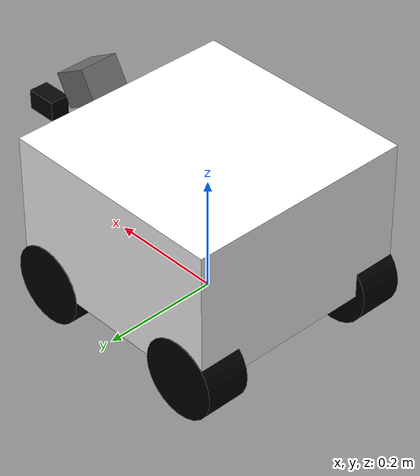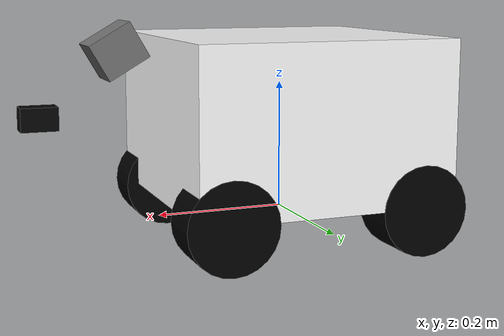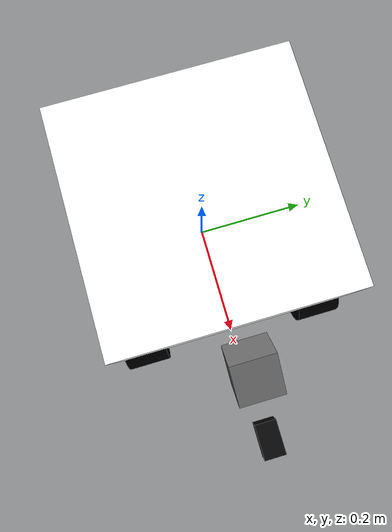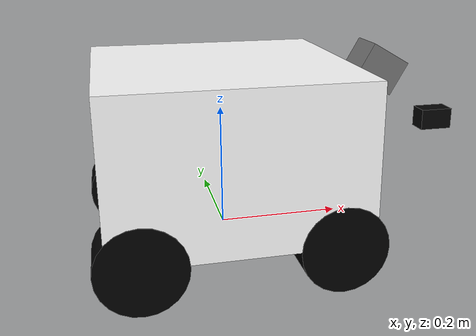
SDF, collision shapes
<sdf version='1.6'>
  <model name='r1_rover_ardupilot'>
    <link name='base_link'>
      <pose>0 0 0 0 -0 0</pose>
      <inertial>
        <pose>0 0 0 0 -0 0</pose>
        <mass>20.0</mass>
        <inertia>
          <ixx>0.37083</ixx>
          <ixy>0.0</ixy>
          <ixz>0.0</ixz>
          <iyy>0.37083</iyy>
          <iyz>0.0</iyz>
          <izz>0.53333</izz>
        </inertia>
      </inertial>
      <collision name='odom_fixed_joint_lump__base_link_collision'>
        <pose>0 0 0.15 0 -0 0</pose>
        <geometry>
          <box>
            <size>0.4 0.4 0.25</size>
          </box>
        </geometry>
        <surface>
          <contact>
            <ode />
          </contact>
          <friction>
            <ode />
          </friction>
        </surface>
      </collision>
      <visual name='odom_fixed_joint_lump__base_link_visual'>
        <pose>0 0 0 0 -0 0</pose>
        <geometry>
          <mesh>
            <scale>1 1 1</scale>
            <uri>model://r1_rover_ardupilot/meshes/chassis_link.STL</uri>
          </mesh>
        </geometry>
        <material>
          <diffuse>1.0 1.0 1.0</diffuse>
          <specular>1.0 1.0 1.0</specular>
        </material>
      </visual>
      <visual name='odom_fixed_joint_lump__top_link_visual_1'>
        <pose>0 0 0.114486 0 -0 0</pose>
        <geometry>
          <mesh>
            <scale>1 1 1</scale>
            <uri>model://r1_rover_ardupilot/meshes/top_link.STL</uri>
          </mesh>
        </geometry>
        <material>
          <diffuse>1.0 1.0 1.0</diffuse>
          <specular>1.0 1.0 1.0</specular>
        </material>
      </visual>
      <visual name='odom_fixed_joint_lump__battery_link_visual_2'>
        <pose>-0.09302 -0.000128 0.114486 0 -0 0</pose>
        <geometry>
          <mesh>
            <scale>1 1 1</scale>
            <uri>model://r1_rover_ardupilot/meshes/battery_link.STL</uri>
          </mesh>
        </geometry>
        <material>
          <diffuse>0.0 0.0 0.0</diffuse>
          <specular>0.5 0.5 0.5</specular>
        </material>
      </visual>
      <visual name='odom_fixed_joint_lump__housing_link_visual_3'>
        <pose>0.03473 0 0.114486 0 -0 0</pose>
        <geometry>
          <mesh>
            <scale>1 1 1</scale>
            <uri>model://r1_rover_ardupilot/meshes/housing_link.STL</uri>
          </mesh>
        </geometry>
        <material>
          <diffuse>0.0 0.0 0.0</diffuse>
          <specular>0.5 0.5 0.5</specular>
        </material>
      </visual>
      <visual name='odom_fixed_joint_lump__l_antenna_link_visual_4'>
        <pose>-0.1565 0.0762 0.114486 0 -0 0</pose>
        <geometry>
          <mesh>
            <scale>1 1 1</scale>
            <uri>model://r1_rover_ardupilot/meshes/antenna_link.STL</uri>
          </mesh>
        </geometry>
        <material>
          <diffuse>0.0 0.0 0.0</diffuse>
          <specular>0.5 0.5 0.5</specular>
        </material>
      </visual>
      <visual name='odom_fixed_joint_lump__r_antenna_link_visual_5'>
        <pose>-0.1565 -0.0762 0.114486 0 -0 0</pose>
        <geometry>
          <mesh>
            <scale>1 1 1</scale>
            <uri>model://r1_rover_ardupilot/meshes/antenna_link.STL</uri>
          </mesh>
        </geometry>
        <material>
          <diffuse>0.0 0.0 0.0</diffuse>
          <specular>0.5 0.5 0.5</specular>
        </material>
      </visual>
      <velocity_decay />
      <velocity_decay />
      <velocity_decay />
      <velocity_decay />
      <velocity_decay />
      <gravity>1</gravity>
      <velocity_decay />
      <sensor name="imu_sensor" type="imu">
        <gz_frame_id>base_link</gz_frame_id>
        <always_on>1</always_on>
        <update_rate>250</update_rate>
        <imu>
          <angular_velocity>
            <x>
              <noise type="gaussian">
                <mean>0</mean>
                <stddev>0.0003394</stddev>
                <dynamic_bias_stddev>3.8785e-05</dynamic_bias_stddev>
                <dynamic_bias_correlation_time>1000</dynamic_bias_correlation_time>
              </noise>
            </x>
            <y>
              <noise type="gaussian">
                <mean>0</mean>
                <stddev>0.0003394</stddev>
                <dynamic_bias_stddev>3.8785e-05</dynamic_bias_stddev>
                <dynamic_bias_correlation_time>1000</dynamic_bias_correlation_time>
              </noise>
            </y>
            <z>
              <noise type="gaussian">
                <mean>0</mean>
                <stddev>0.0003394</stddev>
                <dynamic_bias_stddev>3.8785e-05</dynamic_bias_stddev>
                <dynamic_bias_correlation_time>1000</dynamic_bias_correlation_time>
              </noise>
            </z>
          </angular_velocity>
          <linear_acceleration>
            <x>
              <noise type="gaussian">
                <mean>0</mean>
                <stddev>0.004</stddev>
                <dynamic_bias_stddev>0.006</dynamic_bias_stddev>
                <dynamic_bias_correlation_time>300</dynamic_bias_correlation_time>
              </noise>
            </x>
            <y>
              <noise type="gaussian">
                <mean>0</mean>
                <stddev>0.004</stddev>
                <dynamic_bias_stddev>0.006</dynamic_bias_stddev>
                <dynamic_bias_correlation_time>300</dynamic_bias_correlation_time>
              </noise>
            </y>
            <z>
              <noise type="gaussian">
                <mean>0</mean>
                <stddev>0.004</stddev>
                <dynamic_bias_stddev>0.006</dynamic_bias_stddev>
                <dynamic_bias_correlation_time>300</dynamic_bias_correlation_time>
              </noise>
            </z>
          </linear_acceleration>
        </imu>
      </sensor>
      <sensor name="air_pressure_sensor" type="air_pressure">
        <gz_frame_id>base_link</gz_frame_id>
        <always_on>1</always_on>
        <update_rate>50</update_rate>
        <air_pressure>
          <pressure>
            <noise type="gaussian">
              <mean>0</mean>
              <stddev>0.01</stddev>
            </noise>
          </pressure>
        </air_pressure>
      </sensor>
      <sensor name="magnetometer_sensor" type="magnetometer">
        <gz_frame_id>base_link</gz_frame_id>
        <always_on>1</always_on>
        <update_rate>100</update_rate>
        <magnetometer>
          <!-- TODO: update to fix units and coordinate system when we move past Harmonic -->
          <!-- See https://github.com/gazebosim/gz-sim/pull/2460 -->
          <!-- 3mgauss RMS: NOTE: noise is in tesla but sensor reports data in gauss -->
          <!-- Noise modeled after IIS2MDC -->
          <x>
            <noise type="gaussian">
              <stddev>0.0001</stddev>
            </noise>
          </x>
          <y>
            <noise type="gaussian">
              <stddev>0.0001</stddev>
            </noise>
          </y>
          <z>
            <noise type="gaussian">
              <stddev>0.0001</stddev>
            </noise>
          </z>
        </magnetometer>
      </sensor>
      <sensor name="navsat_sensor" type="navsat">
        <gz_frame_id>base_link</gz_frame_id>
        <always_on>1</always_on>
        <update_rate>30</update_rate>
      </sensor>
    </link>
    <link name='lf_wheel_link'>
      <pose>0.15 0.16317 0.0215 0 -0 0</pose>
      <inertial>
        <pose>0 0 0 1.57079632679 0 0</pose>
        <mass>0.414</mass>
        <inertia>
          <ixx>0.00068682</ixx>
          <ixy>0</ixy>
          <ixz>0</ixz>
          <iyy>0.00068682</iyy>
          <iyz>0</iyz>
          <izz>0.00097299</izz>
        </inertia>
      </inertial>
      <collision name='lf_wheel_link_collision'>
        <pose>0 0 0 1.57079632679 0 0</pose>
        <geometry>
          <cylinder>
            <radius>0.0686</radius>
            <length>0.0762</length>
          </cylinder>
        </geometry>
        <max_contacts>1</max_contacts>
        <surface>
          <friction>
            <torsional>
              <coefficient>0.25</coefficient>
              <use_patch_radius>1</use_patch_radius>
              <surface_radius>0.0686</surface_radius>
            </torsional>
            <ode>
              <mu>1.0</mu>
              <mu2>1.0</mu2>
              <fdir1>1 0 0</fdir1>
              <slip1>0.0</slip1>
              <slip2>0.0</slip2>
            </ode>
          </friction>
          <bounce>
            <restitution_coefficient>0</restitution_coefficient>
            <threshold>1e6</threshold>
          </bounce>
          <contact>
            <ode>
              <min_depth>0.001</min_depth>
              <max_vel>0.0</max_vel>
              <kp>1.0e6</kp>
              <kd>100.0</kd>
            </ode>
          </contact>
        </surface>
      </collision>
      <visual name='lf_wheel_link_visual'>
        <pose>0 0 0 0 -0 0</pose>
        <geometry>
          <mesh>
            <scale>1 1 1</scale>
            <uri>model://r1_rover_ardupilot/meshes/wheel_link.STL</uri>
          </mesh>
        </geometry>
        <material>
          <diffuse>0.0 0.0 0.0</diffuse>
          <specular>0.5 0.5 0.5</specular>
        </material>
      </visual>
      <gravity>1</gravity>
      <velocity_decay />
    </link>
    <joint name='motor_0' type='revolute'>
      <child>lf_wheel_link</child>
      <parent>base_link</parent>
      <axis>
        <xyz>0 1 0</xyz>
        <limit>
          <lower>-1e+16</lower>
          <upper>1e+16</upper>
        </limit>
        <dynamics>
          <spring_reference>0</spring_reference>
          <spring_stiffness>0</spring_stiffness>
          <damping>1.0</damping>
          <friction>0.5</friction>
        </dynamics>
        <use_parent_model_frame>1</use_parent_model_frame>
      </axis>
    </joint>
    <link name='lb_wheel_link'>
      <pose>-0.15 0.16317 0.0215 0 -0 0</pose>
      <inertial>
        <pose>0 0 0 1.57079632679 0 0</pose>
        <mass>0.414</mass>
        <inertia>
          <ixx>0.00068682</ixx>
          <ixy>0</ixy>
          <ixz>0</ixz>
          <iyy>0.00068682</iyy>
          <iyz>0</iyz>
          <izz>0.00097299</izz>
        </inertia>
      </inertial>
      <collision name='lb_wheel_link_collision'>
        <pose>0 0 0 1.57079632679 0 0</pose>
        <geometry>
          <cylinder>
            <radius>0.0686</radius>
            <length>0.0762</length>
          </cylinder>
        </geometry>
        <max_contacts>1</max_contacts>
        <surface>
          <friction>
            <torsional>
              <coefficient>0.25</coefficient>
              <use_patch_radius>1</use_patch_radius>
              <surface_radius>0.0686</surface_radius>
            </torsional>
            <ode>
              <mu>1.0</mu>
              <mu2>1.0</mu2>
              <fdir1>1 0 0</fdir1>
              <slip1>0.0</slip1>
              <slip2>0.0</slip2>
            </ode>
          </friction>
          <bounce>
            <restitution_coefficient>0</restitution_coefficient>
            <threshold>1e6</threshold>
          </bounce>
          <contact>
            <ode>
              <min_depth>0.001</min_depth>
              <max_vel>0.0</max_vel>
              <kp>1.0e6</kp>
              <kd>100.0</kd>
            </ode>
          </contact>
        </surface>
      </collision>
      <visual name='lb_wheel_link_visual'>
        <pose>0 0 0 0 -0 0</pose>
        <geometry>
          <mesh>
            <scale>1 1 1</scale>
            <uri>model://r1_rover_ardupilot/meshes/wheel_link.STL</uri>
          </mesh>
        </geometry>
        <material>
          <diffuse>0.0 0.0 0.0</diffuse>
          <specular>0.5 0.5 0.5</specular>
        </material>
      </visual>
      <gravity>1</gravity>
      <velocity_decay />
    </link>
    <joint name='motor_1' type='revolute'>
      <child>lb_wheel_link</child>
      <parent>base_link</parent>
      <axis>
        <xyz>0 1 0</xyz>
        <limit>
          <lower>-1e+16</lower>
          <upper>1e+16</upper>
        </limit>
        <dynamics>
          <spring_reference>0</spring_reference>
          <spring_stiffness>0</spring_stiffness>
          <damping>1.0</damping>
          <friction>0.5</friction>
        </dynamics>
        <use_parent_model_frame>1</use_parent_model_frame>
      </axis>
    </joint>
    <link name='rf_wheel_link'>
      <pose>0.15 -0.16317 0.0215 0 -0 0</pose>
      <inertial>
        <pose>0 0 0 1.57079632679 0 0</pose>
        <mass>0.414</mass>
        <inertia>
          <ixx>0.00068682</ixx>
          <ixy>0</ixy>
          <ixz>0</ixz>
          <iyy>0.00068682</iyy>
          <iyz>0</iyz>
          <izz>0.00097299</izz>
        </inertia>
      </inertial>
      <collision name='rf_wheel_link_collision'>
        <pose>0 0 0 1.57079632679 0 0</pose>
        <geometry>
          <cylinder>
            <radius>0.0686</radius>
            <length>0.0762</length>
          </cylinder>
        </geometry>
        <max_contacts>1</max_contacts>
        <surface>
          <friction>
            <torsional>
              <coefficient>0.25</coefficient>
              <use_patch_radius>1</use_patch_radius>
              <surface_radius>0.0686</surface_radius>
            </torsional>
            <ode>
              <mu>1.0</mu>
              <mu2>1.0</mu2>
              <fdir1>1 0 0</fdir1>
              <slip1>0.0</slip1>
              <slip2>0.0</slip2>
            </ode>
          </friction>
          <bounce>
            <restitution_coefficient>0</restitution_coefficient>
            <threshold>1e6</threshold>
          </bounce>
          <contact>
            <ode>
              <min_depth>0.001</min_depth>
              <max_vel>0.0</max_vel>
              <kp>1.0e6</kp>
              <kd>100.0</kd>
            </ode>
          </contact>
        </surface>
      </collision>
      <visual name='rf_wheel_link_visual'>
        <pose>0 0 0 0 -0 0</pose>
        <geometry>
          <mesh>
            <scale>1 1 1</scale>
            <uri>model://r1_rover_ardupilot/meshes/wheel_link.STL</uri>
          </mesh>
        </geometry>
        <material>
          <diffuse>0.0 0.0 0.0</diffuse>
          <specular>0.5 0.5 0.5</specular>
        </material>
      </visual>
      <gravity>1</gravity>
      <velocity_decay />
    </link>
    <joint name='motor_2' type='revolute'>
      <child>rf_wheel_link</child>
      <parent>base_link</parent>
      <axis>
        <xyz>0 -1 0</xyz>
        <limit>
          <lower>-1e+16</lower>
          <upper>1e+16</upper>
        </limit>
        <dynamics>
          <spring_reference>0</spring_reference>
          <spring_stiffness>0</spring_stiffness>
          <damping>1.0</damping>
          <friction>0.5</friction>
        </dynamics>
        <use_parent_model_frame>1</use_parent_model_frame>
      </axis>
    </joint>
    <link name='rb_wheel_link'>
      <pose>-0.15 -0.16317 0.0215 0 -0 0</pose>
      <inertial>
        <pose>0 0 0 1.57079632679 0 0</pose>
        <mass>0.414</mass>
        <inertia>
          <ixx>0.00068682</ixx>
          <ixy>0</ixy>
          <ixz>0</ixz>
          <iyy>0.00068682</iyy>
          <iyz>0</iyz>
          <izz>0.00097299</izz>
        </inertia>
      </inertial>
      <collision name='rb_wheel_link_collision'>
        <pose>0 0 0 1.57079632679 0 0</pose>
        <geometry>
          <cylinder>
            <radius>0.0686</radius>
            <length>0.0762</length>
          </cylinder>
        </geometry>
        <max_contacts>1</max_contacts>
        <surface>
          <friction>
            <torsional>
              <coefficient>0.25</coefficient>
              <use_patch_radius>1</use_patch_radius>
              <surface_radius>0.0686</surface_radius>
            </torsional>
            <ode>
              <mu>1.0</mu>
              <mu2>1.0</mu2>
              <fdir1>1 0 0</fdir1>
              <slip1>0.0</slip1>
              <slip2>0.0</slip2>
            </ode>
          </friction>
          <bounce>
            <restitution_coefficient>0</restitution_coefficient>
            <threshold>1e6</threshold>
          </bounce>
          <contact>
            <ode>
              <min_depth>0.001</min_depth>
              <kp>1e8</kp>
            </ode>
          </contact>
        </surface>
      </collision>
      <visual name='rb_wheel_link_visual'>
        <pose>0 0 0 0 -0 0</pose>
        <geometry>
          <mesh>
            <scale>1 1 1</scale>
            <uri>model://r1_rover_ardupilot/meshes/wheel_link.STL</uri>
          </mesh>
        </geometry>
        <material>
          <diffuse>0.0 0.0 0.0</diffuse>
          <specular>0.5 0.5 0.5</specular>
        </material>
      </visual>
      <gravity>1</gravity>
      <velocity_decay />
    </link>
    <joint name='motor_3' type='revolute'>
      <child>rb_wheel_link</child>
      <parent>base_link</parent>
      <axis>
        <xyz>0 -1 0</xyz>
        <limit>
          <lower>-1e+16</lower>
          <upper>1e+16</upper>
        </limit>
        <dynamics>
          <spring_reference>0</spring_reference>
          <spring_stiffness>0</spring_stiffness>
          <damping>1.0</damping>
          <friction>0.5</friction>
        </dynamics>
        <use_parent_model_frame>1</use_parent_model_frame>
      </axis>
    </joint>

    <link name='lidar_link'>
      <pose>0.25 0 0.23 0 0.523598775598 0</pose>
      <inertial>
        <mass>0.05</mass>
        <inertia>
          <ixx>0.0001</ixx>
          <iyy>0.0001</iyy>
          <izz>0.0001</izz>
          <ixy>0</ixy>
          <ixz>0</ixz>
          <iyz>0</iyz>
        </inertia>
      </inertial>

      <visual name='livox_mid360_body'>
        <pose>0 0 0.025 0 0 0</pose>
        <geometry>
          <box>
            <size>0.065 0.065 0.05</size>
          </box>
        </geometry>
        <material>
          <ambient>0.45 0.45 0.45 1</ambient>
          <diffuse>0.45 0.45 0.45 1</diffuse>
        </material>
      </visual>

      <visual name='livox_mid360_top_dome'>
        <pose>0 0 0.05 0 0 0</pose>
        <geometry>
          <sphere>
            <radius>0.032</radius>
          </sphere>
        </geometry>
        <material>
          <ambient>0.0 0.25 1.0 1</ambient>
          <diffuse>0.0 0.25 1.0 1</diffuse>
        </material>
      </visual>

      <visual name='livox_mid360_front_window'>
        <pose>0.034 0 0.032 0 1.5708 0</pose>
        <geometry>
          <box>
            <size>0.028 0.045 0.006</size>
          </box>
        </geometry>
        <material>
          <ambient>0.0 0.0 0.0 1</ambient>
          <diffuse>0.0 0.0 0.0 1</diffuse>
        </material>
      </visual>

      <collision name='lidar_collision'>
        <pose>0 0 0.03 0 0 0</pose>
        <geometry>
          <box>
            <size>0.07 0.07 0.06</size>
          </box>
        </geometry>
      </collision>
    </link>

    <link name='front_camera_link'>
      <!-- Camera is mounted below and slightly in front of the LiDAR to avoid blocking Livox scan -->
      <pose>0.38 0 0.16 0 0 0</pose>

      <inertial>
        <mass>0.03</mass>
        <inertia>
          <ixx>0.00001</ixx>
          <iyy>0.00001</iyy>
          <izz>0.00001</izz>
          <ixy>0</ixy>
          <ixz>0</ixz>
          <iyz>0</iyz>
        </inertia>
      </inertial>

      <visual name='front_camera_body'>
        <pose>0 0 0 0 0 0</pose>
        <geometry>
          <box>
            <size>0.055 0.035 0.035</size>
          </box>
        </geometry>
        <material>
          <ambient>0.02 0.02 0.02 1</ambient>
          <diffuse>0.02 0.02 0.02 1</diffuse>
        </material>
      </visual>

      <visual name='front_camera_lens'>
        <pose>0.030 0 0 0 1.5708 0</pose>
        <geometry>
          <cylinder>
            <radius>0.011</radius>
            <length>0.006</length>
          </cylinder>
        </geometry>
        <material>
          <ambient>0 0 0 1</ambient>
          <diffuse>0 0 0 1</diffuse>
        </material>
      </visual>

      <collision name='front_camera_collision'>
        <pose>0 0 0 0 0 0</pose>
        <geometry>
          <box>
            <size>0.055 0.035 0.035</size>
          </box>
        </geometry>
      </collision>
    </link>

    <joint name='front_camera_joint' type='fixed'>
      <parent>base_link</parent>
      <child>front_camera_link</child>
    </joint>

    <joint name='lidar_joint' type='fixed'>
      <parent>base_link</parent>
      <child>lidar_link</child>
    </joint>

    <static>0</static>

    <plugin filename="gz-sim-odometry-publisher-system" name="gz::sim::systems::OdometryPublisher">
      <odom_frame>map</odom_frame>
      <robot_base_frame>base_link</robot_base_frame>
      <odom_publish_frequency>50</odom_publish_frequency>
      <odom_topic>/ground_truth/odom</odom_topic>
      <dimensions>3</dimensions>
    </plugin>

    <plugin name="ArduPilotPlugin" filename="ArduPilotPlugin">
      <fdm_addr>127.0.0.1</fdm_addr>
      <fdm_port_in>9002</fdm_port_in>
      <connectionTimeoutMaxCount>5</connectionTimeoutMaxCount>
      <lock_step>1</lock_step>
      <no_time_sync>1</no_time_sync>
      <have_32_channels>0</have_32_channels>

      <modelXYZToAirplaneXForwardZDown degrees="true">0 0 0 0 0 0</modelXYZToAirplaneXForwardZDown>
      <gazeboXYZToNED degrees="true">0 0 0 180 0 90</gazeboXYZToNED>

      <imuName>base_link::imu_sensor</imuName>

      <!-- Left side: SERVO1_FUNCTION 73, ArduPilot channel 0 -->
      <control channel="0">
        <jointName>motor_0</jointName>
        <useForce>0</useForce>
        <multiplier>80</multiplier>
        <offset>-0.5</offset>
        <servo_min>1100</servo_min>
        <servo_max>1900</servo_max>
        <type>VELOCITY</type>
        <p_gain>5.0</p_gain>
        <i_gain>0</i_gain>
        <d_gain>0</d_gain>
        <i_max>0</i_max>
        <i_min>0</i_min>
        <cmd_max>40</cmd_max>
        <cmd_min>-40</cmd_min>
      </control>

      <control channel="1">
        <jointName>motor_1</jointName>
        <useForce>0</useForce>
        <multiplier>80</multiplier>
        <offset>-0.5</offset>
        <servo_min>1100</servo_min>
        <servo_max>1900</servo_max>
        <type>VELOCITY</type>
        <p_gain>5.0</p_gain>
        <i_gain>0</i_gain>
        <d_gain>0</d_gain>
        <i_max>0</i_max>
        <i_min>0</i_min>
        <cmd_max>40</cmd_max>
        <cmd_min>-40</cmd_min>
      </control>

      <!-- Right side: SERVO3_FUNCTION 74, ArduPilot channel 2 -->
      <control channel="2">
        <jointName>motor_2</jointName>
        <useForce>0</useForce>
        <multiplier>-80</multiplier>
        <offset>-0.5</offset>
        <servo_min>1100</servo_min>
        <servo_max>1900</servo_max>
        <type>VELOCITY</type>
        <p_gain>5.0</p_gain>
        <i_gain>0</i_gain>
        <d_gain>0</d_gain>
        <i_max>0</i_max>
        <i_min>0</i_min>
        <cmd_max>40</cmd_max>
        <cmd_min>-40</cmd_min>
      </control>

      <control channel="3">
        <jointName>motor_3</jointName>
        <useForce>0</useForce>
        <multiplier>-80</multiplier>
        <offset>-0.5</offset>
        <servo_min>1100</servo_min>
        <servo_max>1900</servo_max>
        <type>VELOCITY</type>
        <p_gain>5.0</p_gain>
        <i_gain>0</i_gain>
        <d_gain>0</d_gain>
        <i_max>0</i_max>
        <i_min>0</i_min>
        <cmd_max>40</cmd_max>
        <cmd_min>-40</cmd_min>
      </control>
    </plugin>

    <plugin
      filename="gz-sim-joint-state-publisher-system"
      name="gz::sim::systems::JointStatePublisher">
      <joint_name>motor_0</joint_name>
      <joint_name>motor_1</joint_name>
      <joint_name>motor_2</joint_name>
      <joint_name>motor_3</joint_name>
    </plugin>
  </model>
</sdf>
